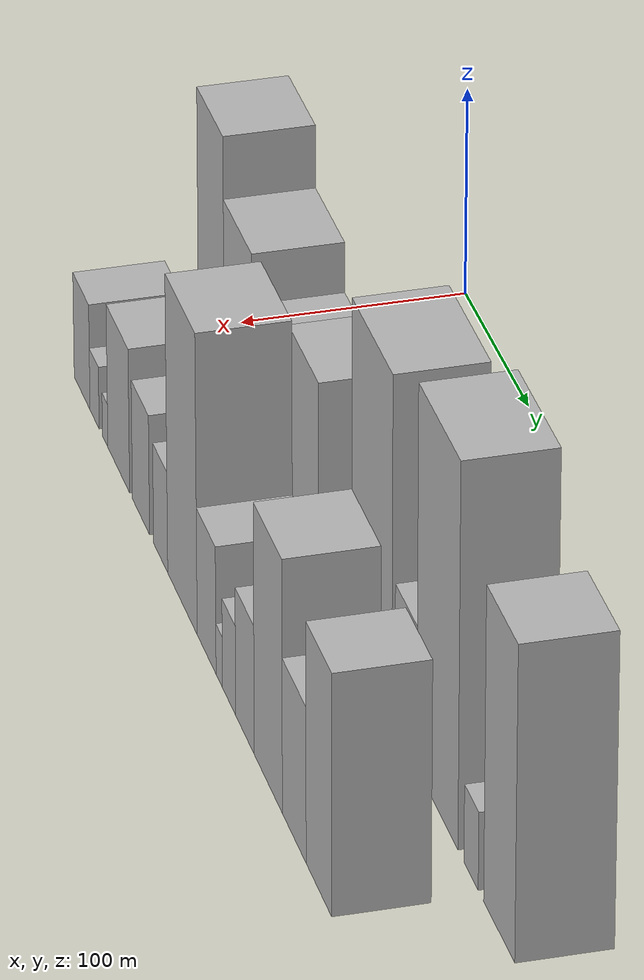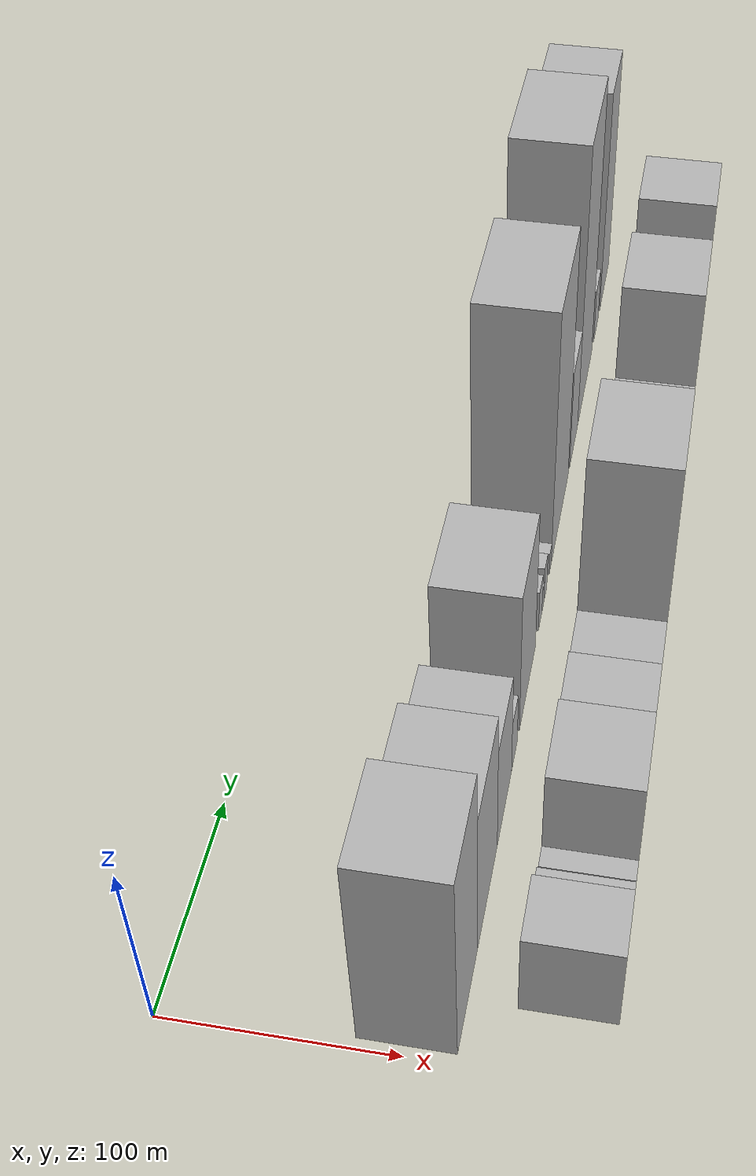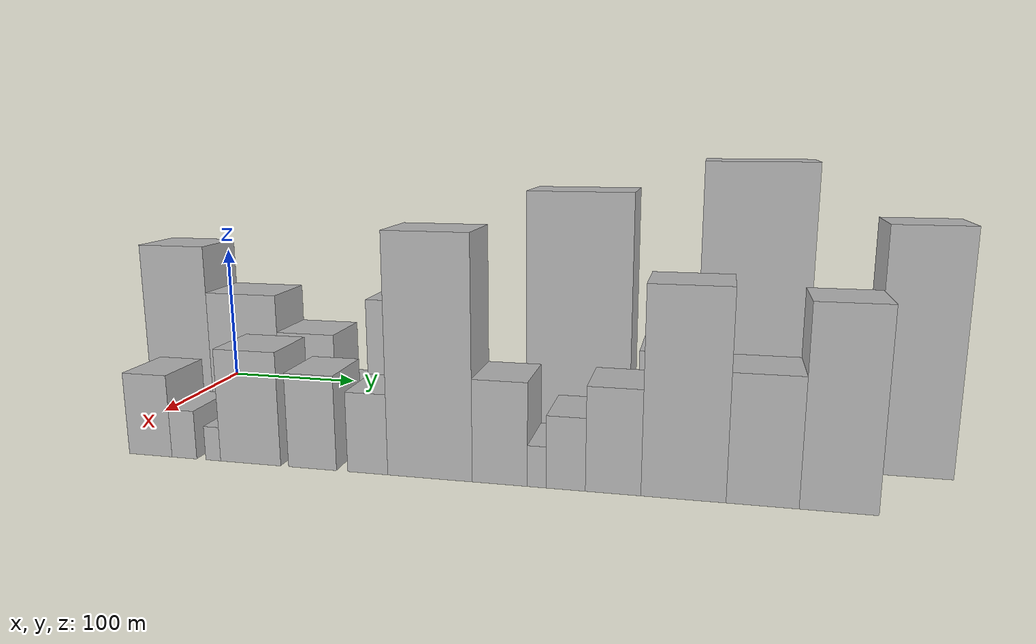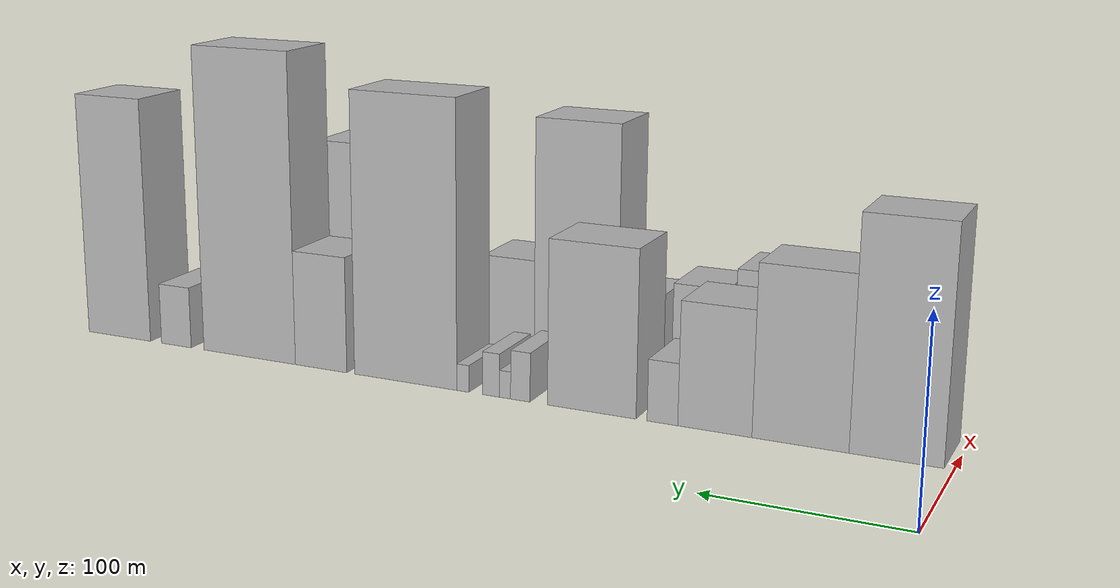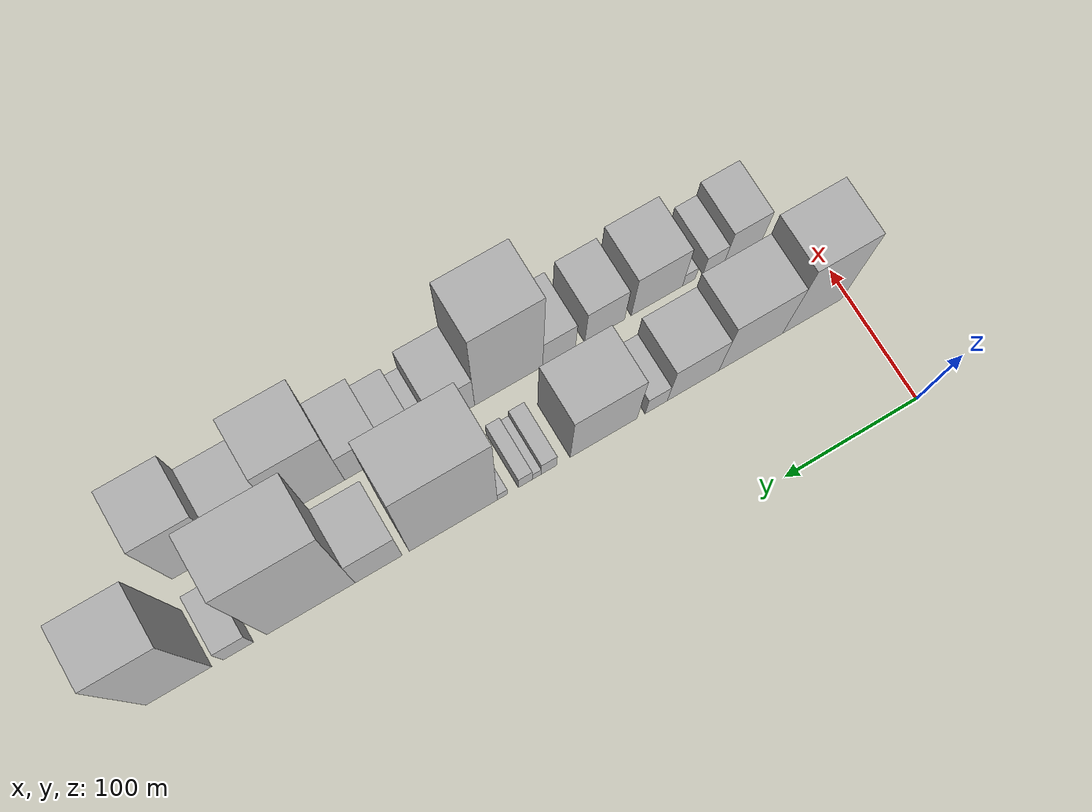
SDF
<sdf version="1.6">
 <world name="default">
  <model name="building_13">
   <static>1</static>
   <pose>100.0000 27.4753 0 0.000000 0.000000 0.000000</pose>
   <link name="link">
    <pose>0 0 60.00 0 0 0</pose>
    <collision name="collision"><geometry><box><size>40.0000 45.4766 120.0000</size></box></geometry></collision>
    <visual name="visual">
     <cast_shadows>0</cast_shadows>
     <geometry><box><size>40.0000 45.4766 120.0000</size></box></geometry>
     <material>
      <script>
       <uri>model://HANNAS_wall/materials/scripts</uri>
       <uri>model://HANNAS_wall/materials/textures</uri>
       <name>vrc/HANNAS_wall</name>
      </script>
     </material>
    </visual>
   </link>
  </model>
  <model name="building_14">
   <static>1</static>
   <pose>100.0000 74.5214 0 0.000000 0.000000 0.000000</pose>
   <link name="link">
    <pose>0 0 45.00 0 0 0</pose>
    <collision name="collision"><geometry><box><size>40.0000 48.6157 90.0000</size></box></geometry></collision>
    <visual name="visual">
     <cast_shadows>0</cast_shadows>
     <geometry><box><size>40.0000 48.6157 90.0000</size></box></geometry>
     <material>
      <script>
       <uri>model://HANNAS_wall/materials/scripts</uri>
       <uri>model://HANNAS_wall/materials/textures</uri>
       <name>vrc/HANNAS_wall</name>
      </script>
     </material>
    </visual>
   </link>
  </model>
  <model name="building_15">
   <static>1</static>
   <pose>100.0000 118.2609 0 0.000000 0.000000 0.000000</pose>
   <link name="link">
    <pose>0 0 33.00 0 0 0</pose>
    <collision name="collision"><geometry><box><size>40.0000 38.8634 66.0000</size></box></geometry></collision>
    <visual name="visual">
     <cast_shadows>0</cast_shadows>
     <geometry><box><size>40.0000 38.8634 66.0000</size></box></geometry>
     <material>
      <script>
       <uri>model://HANNAS_wall/materials/scripts</uri>
       <uri>model://HANNAS_wall/materials/textures</uri>
       <name>vrc/HANNAS_wall</name>
      </script>
     </material>
    </visual>
   </link>
  </model>
  <model name="building_16">
   <static>1</static>
   <pose>100.0000 145.9519 0 0.000000 0.000000 0.000000</pose>
   <link name="link">
    <pose>0 0 16.50 0 0 0</pose>
    <collision name="collision"><geometry><box><size>40.0000 16.5186 33.0000</size></box></geometry></collision>
    <visual name="visual">
     <cast_shadows>0</cast_shadows>
     <geometry><box><size>40.0000 16.5186 33.0000</size></box></geometry>
     <material>
      <script>
       <uri>model://HANNAS_wall/materials/scripts</uri>
       <uri>model://HANNAS_wall/materials/textures</uri>
       <name>vrc/HANNAS_wall</name>
      </script>
     </material>
    </visual>
   </link>
  </model>
  <model name="building_17">
   <static>1</static>
   <pose>100.0000 185.0244 0 0.000000 0.000000 0.000000</pose>
   <link name="link">
    <pose>0 0 45.00 0 0 0</pose>
    <collision name="collision"><geometry><box><size>40.0000 49.6262 90.0000</size></box></geometry></collision>
    <visual name="visual">
     <cast_shadows>0</cast_shadows>
     <geometry><box><size>40.0000 49.6262 90.0000</size></box></geometry>
     <material>
      <script>
       <uri>model://HANNAS_wall/materials/scripts</uri>
       <uri>model://HANNAS_wall/materials/textures</uri>
       <name>vrc/HANNAS_wall</name>
      </script>
     </material>
    </visual>
   </link>
  </model>
  <model name="building_18">
   <static>1</static>
   <pose>100.0000 225.5146 0 0.000000 0.000000 0.000000</pose>
   <link name="link">
    <pose>0 0 13.50 0 0 0</pose>
    <collision name="collision"><geometry><box><size>40.0000 11.3542 27.0000</size></box></geometry></collision>
    <visual name="visual">
     <cast_shadows>0</cast_shadows>
     <geometry><box><size>40.0000 11.3542 27.0000</size></box></geometry>
     <material>
      <script>
       <uri>model://HANNAS_wall/materials/scripts</uri>
       <uri>model://HANNAS_wall/materials/textures</uri>
       <name>vrc/HANNAS_wall</name>
      </script>
     </material>
    </visual>
   </link>
  </model>
  <model name="building_19">
   <static>1</static>
   <pose>100.0000 234.4472 0 0.000000 0.000000 0.000000</pose>
   <link name="link">
    <pose>0 0 7.50 0 0 0</pose>
    <collision name="collision"><geometry><box><size>40.0000 6.5109 15.0000</size></box></geometry></collision>
    <visual name="visual">
     <cast_shadows>0</cast_shadows>
     <geometry><box><size>40.0000 6.5109 15.0000</size></box></geometry>
     <material>
      <script>
       <uri>model://HANNAS_wall/materials/scripts</uri>
       <uri>model://HANNAS_wall/materials/textures</uri>
       <name>vrc/HANNAS_wall</name>
      </script>
     </material>
    </visual>
   </link>
  </model>
  <model name="building_20">
   <static>1</static>
   <pose>100.0000 242.7347 0 0.000000 0.000000 0.000000</pose>
   <link name="link">
    <pose>0 0 12.00 0 0 0</pose>
    <collision name="collision"><geometry><box><size>40.0000 10.0641 24.0000</size></box></geometry></collision>
    <visual name="visual">
     <cast_shadows>0</cast_shadows>
     <geometry><box><size>40.0000 10.0641 24.0000</size></box></geometry>
     <material>
      <script>
       <uri>model://HANNAS_wall/materials/scripts</uri>
       <uri>model://HANNAS_wall/materials/textures</uri>
       <name>vrc/HANNAS_wall</name>
      </script>
     </material>
    </visual>
   </link>
  </model>
  <model name="building_21">
   <static>1</static>
   <pose>100.0000 259.4535 0 0.000000 0.000000 0.000000</pose>
   <link name="link">
    <pose>0 0 7.50 0 0 0</pose>
    <collision name="collision"><geometry><box><size>40.0000 7.3734 15.0000</size></box></geometry></collision>
    <visual name="visual">
     <cast_shadows>0</cast_shadows>
     <geometry><box><size>40.0000 7.3734 15.0000</size></box></geometry>
     <material>
      <script>
       <uri>model://HANNAS_wall/materials/scripts</uri>
       <uri>model://HANNAS_wall/materials/textures</uri>
       <name>vrc/HANNAS_wall</name>
      </script>
     </material>
    </visual>
   </link>
  </model>
  <model name="building_22">
   <static>1</static>
   <pose>100.0000 294.9008 0 0.000000 0.000000 0.000000</pose>
   <link name="link">
    <pose>0 0 79.50 0 0 0</pose>
    <collision name="collision"><geometry><box><size>40.0000 63.5212 159.0000</size></box></geometry></collision>
    <visual name="visual">
     <cast_shadows>0</cast_shadows>
     <geometry><box><size>40.0000 63.5212 159.0000</size></box></geometry>
     <material>
      <script>
       <uri>model://HANNAS_wall/materials/scripts</uri>
       <uri>model://HANNAS_wall/materials/textures</uri>
       <name>vrc/HANNAS_wall</name>
      </script>
     </material>
    </visual>
   </link>
  </model>
  <model name="building_23">
   <static>1</static>
   <pose>100.0000 348.4494 0 0.000000 0.000000 0.000000</pose>
   <link name="link">
    <pose>0 0 33.00 0 0 0</pose>
    <collision name="collision"><geometry><box><size>40.0000 33.5760 66.0000</size></box></geometry></collision>
    <visual name="visual">
     <cast_shadows>0</cast_shadows>
     <geometry><box><size>40.0000 33.5760 66.0000</size></box></geometry>
     <material>
      <script>
       <uri>model://HANNAS_wall/materials/scripts</uri>
       <uri>model://HANNAS_wall/materials/textures</uri>
       <name>vrc/HANNAS_wall</name>
      </script>
     </material>
    </visual>
   </link>
  </model>
  <model name="building_24">
   <static>1</static>
   <pose>100.0000 396.3924 0 0.000000 0.000000 0.000000</pose>
   <link name="link">
    <pose>0 0 88.50 0 0 0</pose>
    <collision name="collision"><geometry><box><size>40.0000 62.3100 177.0000</size></box></geometry></collision>
    <visual name="visual">
     <cast_shadows>0</cast_shadows>
     <geometry><box><size>40.0000 62.3100 177.0000</size></box></geometry>
     <material>
      <script>
       <uri>model://HANNAS_wall/materials/scripts</uri>
       <uri>model://HANNAS_wall/materials/textures</uri>
       <name>vrc/HANNAS_wall</name>
      </script>
     </material>
    </visual>
   </link>
  </model>
  <model name="building_25">
   <static>1</static>
   <pose>100.0000 447.0875 0 0.000000 0.000000 0.000000</pose>
   <link name="link">
    <pose>0 0 18.00 0 0 0</pose>
    <collision name="collision"><geometry><box><size>40.0000 21.0802 36.0000</size></box></geometry></collision>
    <visual name="visual">
     <cast_shadows>0</cast_shadows>
     <geometry><box><size>40.0000 21.0802 36.0000</size></box></geometry>
     <material>
      <script>
       <uri>model://HANNAS_wall/materials/scripts</uri>
       <uri>model://HANNAS_wall/materials/textures</uri>
       <name>vrc/HANNAS_wall</name>
      </script>
     </material>
    </visual>
   </link>
  </model>
  <model name="building_26">
   <static>1</static>
   <pose>100.0000 488.2451 0 0.000000 0.000000 0.000000</pose>
   <link name="link">
    <pose>0 0 72.00 0 0 0</pose>
    <collision name="collision"><geometry><box><size>40.0000 45.2351 144.0000</size></box></geometry></collision>
    <visual name="visual">
     <cast_shadows>0</cast_shadows>
     <geometry><box><size>40.0000 45.2351 144.0000</size></box></geometry>
     <material>
      <script>
       <uri>model://HANNAS_wall/materials/scripts</uri>
       <uri>model://HANNAS_wall/materials/textures</uri>
       <name>vrc/HANNAS_wall</name>
      </script>
     </material>
    </visual>
   </link>
  </model>
  <model name="building_41">
   <static>1</static>
   <pose>160.0000 41.8280 0 0.000000 0.000000 0.000000</pose>
   <link name="link">
    <pose>0 0 25.50 0 0 0</pose>
    <collision name="collision"><geometry><box><size>40.0000 28.8707 51.0000</size></box></geometry></collision>
    <visual name="visual">
     <cast_shadows>0</cast_shadows>
     <geometry><box><size>40.0000 28.8707 51.0000</size></box></geometry>
     <material>
      <script>
       <uri>model://HANNAS_wall/materials/scripts</uri>
       <uri>model://HANNAS_wall/materials/textures</uri>
       <name>vrc/HANNAS_wall</name>
      </script>
     </material>
    </visual>
   </link>
  </model>
  <model name="building_42">
   <static>1</static>
   <pose>160.0000 64.5615 0 0.000000 0.000000 0.000000</pose>
   <link name="link">
    <pose>0 0 15.00 0 0 0</pose>
    <collision name="collision"><geometry><box><size>40.0000 16.5964 30.0000</size></box></geometry></collision>
    <visual name="visual">
     <cast_shadows>0</cast_shadows>
     <geometry><box><size>40.0000 16.5964 30.0000</size></box></geometry>
     <material>
      <script>
       <uri>model://HANNAS_wall/materials/scripts</uri>
       <uri>model://HANNAS_wall/materials/textures</uri>
       <name>vrc/HANNAS_wall</name>
      </script>
     </material>
    </visual>
   </link>
  </model>
  <model name="building_43">
   <static>1</static>
   <pose>160.0000 83.7597 0 0.000000 0.000000 0.000000</pose>
   <link name="link">
    <pose>0 0 10.50 0 0 0</pose>
    <collision name="collision"><geometry><box><size>40.0000 9.8000 21.0000</size></box></geometry></collision>
    <visual name="visual">
     <cast_shadows>0</cast_shadows>
     <geometry><box><size>40.0000 9.8000 21.0000</size></box></geometry>
     <material>
      <script>
       <uri>model://HANNAS_wall/materials/scripts</uri>
       <uri>model://HANNAS_wall/materials/textures</uri>
       <name>vrc/HANNAS_wall</name>
      </script>
     </material>
    </visual>
   </link>
  </model>
  <model name="building_44">
   <static>1</static>
   <pose>160.0000 108.1260 0 0.000000 0.000000 0.000000</pose>
   <link name="link">
    <pose>0 0 34.50 0 0 0</pose>
    <collision name="collision"><geometry><box><size>40.0000 38.9326 69.0000</size></box></geometry></collision>
    <visual name="visual">
     <cast_shadows>0</cast_shadows>
     <geometry><box><size>40.0000 38.9326 69.0000</size></box></geometry>
     <material>
      <script>
       <uri>model://HANNAS_wall/materials/scripts</uri>
       <uri>model://HANNAS_wall/materials/textures</uri>
       <name>vrc/HANNAS_wall</name>
      </script>
     </material>
    </visual>
   </link>
  </model>
  <model name="building_45">
   <static>1</static>
   <pose>160.0000 147.6581 0 0.000000 0.000000 0.000000</pose>
   <link name="link">
    <pose>0 0 28.50 0 0 0</pose>
    <collision name="collision"><geometry><box><size>40.0000 30.1317 57.0000</size></box></geometry></collision>
    <visual name="visual">
     <cast_shadows>0</cast_shadows>
     <geometry><box><size>40.0000 30.1317 57.0000</size></box></geometry>
     <material>
      <script>
       <uri>model://HANNAS_wall/materials/scripts</uri>
       <uri>model://HANNAS_wall/materials/textures</uri>
       <name>vrc/HANNAS_wall</name>
      </script>
     </material>
    </visual>
   </link>
  </model>
  <model name="building_46">
   <static>1</static>
   <pose>160.0000 181.9677 0 0.000000 0.000000 0.000000</pose>
   <link name="link">
    <pose>0 0 24.00 0 0 0</pose>
    <collision name="collision"><geometry><box><size>40.0000 24.4875 48.0000</size></box></geometry></collision>
    <visual name="visual">
     <cast_shadows>0</cast_shadows>
     <geometry><box><size>40.0000 24.4875 48.0000</size></box></geometry>
     <material>
      <script>
       <uri>model://HANNAS_wall/materials/scripts</uri>
       <uri>model://HANNAS_wall/materials/textures</uri>
       <name>vrc/HANNAS_wall</name>
      </script>
     </material>
    </visual>
   </link>
  </model>
  <model name="building_47">
   <static>1</static>
   <pose>160.0000 219.3820 0 0.000000 0.000000 0.000000</pose>
   <link name="link">
    <pose>0 0 70.50 0 0 0</pose>
    <collision name="collision"><geometry><box><size>40.0000 50.3412 141.0000</size></box></geometry></collision>
    <visual name="visual">
     <cast_shadows>0</cast_shadows>
     <geometry><box><size>40.0000 50.3412 141.0000</size></box></geometry>
     <material>
      <script>
       <uri>model://HANNAS_wall/materials/scripts</uri>
       <uri>model://HANNAS_wall/materials/textures</uri>
       <name>vrc/HANNAS_wall</name>
      </script>
     </material>
    </visual>
   </link>
  </model>
  <model name="building_48">
   <static>1</static>
   <pose>160.0000 260.4112 0 0.000000 0.000000 0.000000</pose>
   <link name="link">
    <pose>0 0 30.00 0 0 0</pose>
    <collision name="collision"><geometry><box><size>40.0000 31.7172 60.0000</size></box></geometry></collision>
    <visual name="visual">
     <cast_shadows>0</cast_shadows>
     <geometry><box><size>40.0000 31.7172 60.0000</size></box></geometry>
     <material>
      <script>
       <uri>model://HANNAS_wall/materials/scripts</uri>
       <uri>model://HANNAS_wall/materials/textures</uri>
       <name>vrc/HANNAS_wall</name>
      </script>
     </material>
    </visual>
   </link>
  </model>
  <model name="building_49">
   <static>1</static>
   <pose>160.0000 281.5424 0 0.000000 0.000000 0.000000</pose>
   <link name="link">
    <pose>0 0 12.00 0 0 0</pose>
    <collision name="collision"><geometry><box><size>40.0000 10.5450 24.0000</size></box></geometry></collision>
    <visual name="visual">
     <cast_shadows>0</cast_shadows>
     <geometry><box><size>40.0000 10.5450 24.0000</size></box></geometry>
     <material>
      <script>
       <uri>model://HANNAS_wall/materials/scripts</uri>
       <uri>model://HANNAS_wall/materials/textures</uri>
       <name>vrc/HANNAS_wall</name>
      </script>
     </material>
    </visual>
   </link>
  </model>
  <model name="building_50">
   <static>1</static>
   <pose>160.0000 297.7950 0 0.000000 0.000000 0.000000</pose>
   <link name="link">
    <pose>0 0 21.00 0 0 0</pose>
    <collision name="collision"><geometry><box><size>40.0000 21.9603 42.0000</size></box></geometry></collision>
    <visual name="visual">
     <cast_shadows>0</cast_shadows>
     <geometry><box><size>40.0000 21.9603 42.0000</size></box></geometry>
     <material>
      <script>
       <uri>model://HANNAS_wall/materials/scripts</uri>
       <uri>model://HANNAS_wall/materials/textures</uri>
       <name>vrc/HANNAS_wall</name>
      </script>
     </material>
    </visual>
   </link>
  </model>
  <model name="building_51">
   <static>1</static>
   <pose>160.0000 323.9719 0 0.000000 0.000000 0.000000</pose>
   <link name="link">
    <pose>0 0 30.00 0 0 0</pose>
    <collision name="collision"><geometry><box><size>40.0000 30.3934 60.0000</size></box></geometry></collision>
    <visual name="visual">
     <cast_shadows>0</cast_shadows>
     <geometry><box><size>40.0000 30.3934 60.0000</size></box></geometry>
     <material>
      <script>
       <uri>model://HANNAS_wall/materials/scripts</uri>
       <uri>model://HANNAS_wall/materials/textures</uri>
       <name>vrc/HANNAS_wall</name>
      </script>
     </material>
    </visual>
   </link>
  </model>
  <model name="building_52">
   <static>1</static>
   <pose>160.0000 361.7659 0 0.000000 0.000000 0.000000</pose>
   <link name="link">
    <pose>0 0 58.50 0 0 0</pose>
    <collision name="collision"><geometry><box><size>40.0000 45.1946 117.0000</size></box></geometry></collision>
    <visual name="visual">
     <cast_shadows>0</cast_shadows>
     <geometry><box><size>40.0000 45.1946 117.0000</size></box></geometry>
     <material>
      <script>
       <uri>model://HANNAS_wall/materials/scripts</uri>
       <uri>model://HANNAS_wall/materials/textures</uri>
       <name>vrc/HANNAS_wall</name>
      </script>
     </material>
    </visual>
   </link>
  </model>
  <model name="building_53">
   <static>1</static>
   <pose>160.0000 403.1186 0 0.000000 0.000000 0.000000</pose>
   <link name="link">
    <pose>0 0 36.00 0 0 0</pose>
    <collision name="collision"><geometry><box><size>40.0000 37.5109 72.0000</size></box></geometry></collision>
    <visual name="visual">
     <cast_shadows>0</cast_shadows>
     <geometry><box><size>40.0000 37.5109 72.0000</size></box></geometry>
     <material>
      <script>
       <uri>model://HANNAS_wall/materials/scripts</uri>
       <uri>model://HANNAS_wall/materials/textures</uri>
       <name>vrc/HANNAS_wall</name>
      </script>
     </material>
    </visual>
   </link>
  </model>
  <model name="building_54">
   <static>1</static>
   <pose>160.0000 441.7292 0 0.000000 0.000000 0.000000</pose>
   <link name="link">
    <pose>0 0 55.50 0 0 0</pose>
    <collision name="collision"><geometry><box><size>40.0000 39.7103 111.0000</size></box></geometry></collision>
    <visual name="visual">
     <cast_shadows>0</cast_shadows>
     <geometry><box><size>40.0000 39.7103 111.0000</size></box></geometry>
     <material>
      <script>
       <uri>model://HANNAS_wall/materials/scripts</uri>
       <uri>model://HANNAS_wall/materials/textures</uri>
       <name>vrc/HANNAS_wall</name>
      </script>
     </material>
    </visual>
   </link>
  </model>
 </world>
</sdf>
